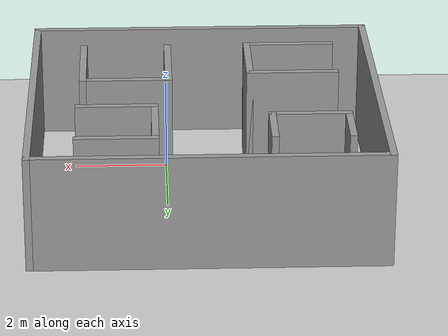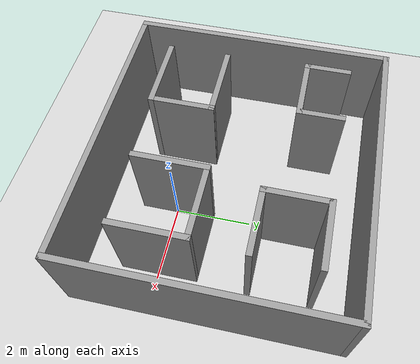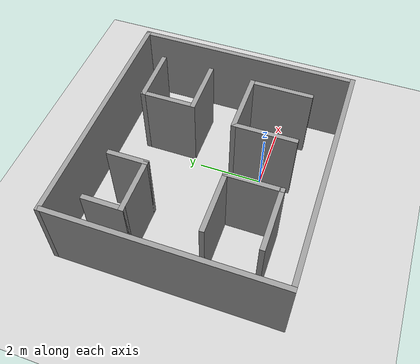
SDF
<sdf version="1.7">
 <world name="default">
  <light name="sun" type="directional">
   <pose>0 0 10 0 -0 0</pose>
   <diffuse>0.8 0.8 0.8 1</diffuse>
   <specular>0.2 0.2 0.2 1</specular>
   <attenuation>
    <range>1000</range>
    <constant>0.9</constant>
    <linear>0.01</linear>
    <quadratic>0.001</quadratic>
   </attenuation>
   <direction>-0.5 0.1 -0.9</direction>
   <spot><inner_angle>0</inner_angle><outer_angle>0</outer_angle><falloff>0</falloff></spot>
  </light>
  <model name="ground_plane">
   <static>1</static>
   <link name="link">
    <collision name="collision">
     <geometry><plane><normal>0 0 1</normal><size>100 100</size></plane></geometry>
     <surface><friction><ode><mu>100</mu><mu2>50</mu2></ode></friction></surface>
    </collision>
    <visual name="visual">
     <cast_shadows>0</cast_shadows>
     <geometry><plane><normal>0 0 1</normal><size>100 100</size></plane></geometry>
     <material>
      <script><uri>file://media/materials/scripts/gazebo.material</uri><name>Gazebo/Grey</name></script>
     </material>
    </visual>
   </link>
  </model>
  <gravity>0 0 -9.8</gravity>
  <magnetic_field>6e-06 2.3e-05 -4.2e-05</magnetic_field>
  <atmosphere type="adiabatic"/>
  <physics type="ode">
   <max_step_size>0.001</max_step_size>
   <real_time_factor>1</real_time_factor>
   <real_time_update_rate>1000</real_time_update_rate>
  </physics>
  <scene><ambient>0.4 0.4 0.4 1</ambient><background>0.7 0.7 0.7 1</background><shadows>1</shadows></scene>
  <audio><device>default</device></audio>
  <spherical_coordinates>
   <surface_model>EARTH_WGS84</surface_model>
   <latitude_deg>0</latitude_deg>
   <longitude_deg>0</longitude_deg>
   <elevation>0</elevation>
   <heading_deg>0</heading_deg>
  </spherical_coordinates>
  <model name="map">
   <pose>-0.815016 1.44761 0 0 -0 0</pose>
   <link name="Wall_11">
    <collision name="Wall_11_Collision">
     <geometry><box><size>1.25 0.15 2.5</size></box></geometry>
     <pose>0 0 1.25 0 -0 0</pose>
    </collision>
    <visual name="Wall_11_Visual">
     <pose>0 0 1.25 0 -0 0</pose>
     <geometry><box><size>1.25 0.15 2.5</size></box></geometry>
     <material>
      <script><uri>file://media/materials/scripts/gazebo.material</uri><name>Gazebo/Grey</name></script>
      <ambient>1 1 1 1</ambient>
     </material>
     <meta><layer>0</layer></meta>
    </visual>
    <pose>-2.96019 1.91685 0 0 -0 -1.5708</pose>
   </link>
   <link name="Wall_12">
    <collision name="Wall_12_Collision">
     <geometry><box><size>1.75 0.15 2.5</size></box></geometry>
     <pose>0 0 1.25 0 -0 0</pose>
    </collision>
    <visual name="Wall_12_Visual">
     <pose>0 0 1.25 0 -0 0</pose>
     <geometry><box><size>1.75 0.15 2.5</size></box></geometry>
     <material>
      <script><uri>file://media/materials/scripts/gazebo.material</uri><name>Gazebo/Grey</name></script>
      <ambient>1 1 1 1</ambient>
     </material>
     <meta><layer>0</layer></meta>
    </visual>
    <pose>-2.16019 1.36685 0 0 -0 0</pose>
   </link>
   <link name="Wall_13">
    <collision name="Wall_13_Collision">
     <geometry><box><size>1.25 0.15 2.5</size></box></geometry>
     <pose>0 0 1.25 0 -0 0</pose>
    </collision>
    <visual name="Wall_13_Visual">
     <pose>0 0 1.25 0 -0 0</pose>
     <geometry><box><size>1.25 0.15 2.5</size></box></geometry>
     <material>
      <script><uri>file://media/materials/scripts/gazebo.material</uri><name>Gazebo/Grey</name></script>
      <ambient>1 1 1 1</ambient>
     </material>
     <meta><layer>0</layer></meta>
    </visual>
    <pose>-1.36019 1.91685 0 0 -0 1.5708</pose>
   </link>
   <link name="Wall_15">
    <collision name="Wall_15_Collision">
     <geometry><box><size>1.75 0.15 2.5</size></box></geometry>
     <pose>0 0 1.25 0 -0 0</pose>
    </collision>
    <visual name="Wall_15_Visual">
     <pose>0 0 1.25 0 -0 0</pose>
     <geometry><box><size>1.75 0.15 2.5</size></box></geometry>
     <material>
      <script><uri>file://media/materials/scripts/gazebo.material</uri><name>Gazebo/Grey</name></script>
      <ambient>1 1 1 1</ambient>
     </material>
     <meta><layer>0</layer></meta>
    </visual>
    <pose>1.88226 2.48206 0 0 -0 3.14159</pose>
   </link>
   <link name="Wall_16">
    <collision name="Wall_16_Collision">
     <geometry><box><size>1.75 0.15 2.5</size></box></geometry>
     <pose>0 0 1.25 0 -0 0</pose>
    </collision>
    <visual name="Wall_16_Visual">
     <pose>0 0 1.25 0 -0 0</pose>
     <geometry><box><size>1.75 0.15 2.5</size></box></geometry>
     <material>
      <script><uri>file://media/materials/scripts/gazebo.material</uri><name>Gazebo/Grey</name></script>
      <ambient>1 1 1 1</ambient>
     </material>
     <meta><layer>0</layer></meta>
    </visual>
    <pose>1.08226 1.68206 0 0 -0 -1.5708</pose>
   </link>
   <link name="Wall_17">
    <collision name="Wall_17_Collision">
     <geometry><box><size>1.75 0.15 2.5</size></box></geometry>
     <pose>0 0 1.25 0 -0 0</pose>
    </collision>
    <visual name="Wall_17_Visual">
     <pose>0 0 1.25 0 -0 0</pose>
     <geometry><box><size>1.75 0.15 2.5</size></box></geometry>
     <material>
      <script><uri>file://media/materials/scripts/gazebo.material</uri><name>Gazebo/Grey</name></script>
      <ambient>1 1 1 1</ambient>
     </material>
     <meta><layer>0</layer></meta>
    </visual>
    <pose>1.88226 0.882057 0 0 -0 0</pose>
   </link>
   <link name="Wall_19">
    <collision name="Wall_19_Collision">
     <geometry><box><size>2 0.15 2.5</size></box></geometry>
     <pose>0 0 1.25 0 -0 0</pose>
    </collision>
    <visual name="Wall_19_Visual">
     <pose>0 0 1.25 0 -0 0</pose>
     <geometry><box><size>2 0.15 2.5</size></box></geometry>
     <material>
      <script><uri>file://media/materials/scripts/gazebo.material</uri><name>Gazebo/Grey</name></script>
      <ambient>1 1 1 1</ambient>
     </material>
     <meta><layer>0</layer></meta>
    </visual>
    <pose>-1.92873 -0.83345 0 0 -0 0</pose>
   </link>
   <link name="Wall_20">
    <collision name="Wall_20_Collision">
     <geometry><box><size>1.75 0.15 2.5</size></box></geometry>
     <pose>0 0 1.25 0 -0 0</pose>
    </collision>
    <visual name="Wall_20_Visual">
     <pose>0 0 1.25 0 -0 0</pose>
     <geometry><box><size>1.75 0.15 2.5</size></box></geometry>
     <material>
      <script><uri>file://media/materials/scripts/gazebo.material</uri><name>Gazebo/Grey</name></script>
      <ambient>1 1 1 1</ambient>
     </material>
     <meta><layer>0</layer></meta>
    </visual>
    <pose>-1.00373 -1.63345 0 0 -0 -1.5708</pose>
   </link>
   <link name="Wall_21">
    <collision name="Wall_21_Collision">
     <geometry><box><size>2 0.15 2.5</size></box></geometry>
     <pose>0 0 1.25 0 -0 0</pose>
    </collision>
    <visual name="Wall_21_Visual">
     <pose>0 0 1.25 0 -0 0</pose>
     <geometry><box><size>2 0.15 2.5</size></box></geometry>
     <material>
      <script><uri>file://media/materials/scripts/gazebo.material</uri><name>Gazebo/Grey</name></script>
      <ambient>1 1 1 1</ambient>
     </material>
     <meta><layer>0</layer></meta>
    </visual>
    <pose>-1.92873 -2.43345 0 0 -0 3.14159</pose>
   </link>
   <link name="Wall_23">
    <collision name="Wall_23_Collision">
     <geometry><box><size>2 0.15 2.5</size></box></geometry>
     <pose>0 0 1.25 0 -0 0</pose>
    </collision>
    <visual name="Wall_23_Visual">
     <pose>0 0 1.25 0 -0 0</pose>
     <geometry><box><size>2 0.15 2.5</size></box></geometry>
     <material>
      <script><uri>file://media/materials/scripts/gazebo.material</uri><name>Gazebo/Grey</name></script>
      <ambient>1 1 1 1</ambient>
     </material>
     <meta><layer>0</layer></meta>
    </visual>
    <pose>0.765955 -1.42932 0 0 -0 1.5708</pose>
   </link>
   <link name="Wall_24">
    <collision name="Wall_24_Collision">
     <geometry><box><size>2 0.15 2.5</size></box></geometry>
     <pose>0 0 1.25 0 -0 0</pose>
    </collision>
    <visual name="Wall_24_Visual">
     <pose>0 0 1.25 0 -0 0</pose>
     <geometry><box><size>2 0.15 2.5</size></box></geometry>
     <material>
      <script><uri>file://media/materials/scripts/gazebo.material</uri><name>Gazebo/Grey</name></script>
      <ambient>1 1 1 1</ambient>
     </material>
     <meta><layer>0</layer></meta>
    </visual>
    <pose>1.69095 -0.504325 0 0 -0 0</pose>
   </link>
   <link name="Wall_25">
    <collision name="Wall_25_Collision">
     <geometry><box><size>2 0.15 2.5</size></box></geometry>
     <pose>0 0 1.25 0 -0 0</pose>
    </collision>
    <visual name="Wall_25_Visual">
     <pose>0 0 1.25 0 -0 0</pose>
     <geometry><box><size>2 0.15 2.5</size></box></geometry>
     <material>
      <script><uri>file://media/materials/scripts/gazebo.material</uri><name>Gazebo/Grey</name></script>
      <ambient>1 1 1 1</ambient>
     </material>
     <meta><layer>0</layer></meta>
    </visual>
    <pose>2.61596 -1.42932 0 0 -0 -1.5708</pose>
   </link>
   <link name="Wall_5">
    <collision name="Wall_5_Collision">
     <geometry><box><size>7 0.15 2.5</size></box></geometry>
     <pose>0 0 1.25 0 -0 0</pose>
    </collision>
    <visual name="Wall_5_Visual">
     <pose>0 0 1.25 0 -0 0</pose>
     <geometry><box><size>7 0.15 2.5</size></box></geometry>
     <material>
      <script><uri>file://media/materials/scripts/gazebo.material</uri><name>Gazebo/Grey</name></script>
      <ambient>1 1 1 1</ambient>
     </material>
     <meta><layer>0</layer></meta>
    </visual>
    <pose>-3.675 -0 0 0 -0 -1.5708</pose>
   </link>
   <link name="Wall_6">
    <collision name="Wall_6_Collision">
     <geometry><box><size>7.5 0.15 2.5</size></box></geometry>
     <pose>0 0 1.25 0 -0 0</pose>
    </collision>
    <visual name="Wall_6_Visual">
     <pose>0 0 1.25 0 -0 0</pose>
     <geometry><box><size>7.5 0.15 2.5</size></box></geometry>
     <material>
      <script><uri>file://media/materials/scripts/gazebo.material</uri><name>Gazebo/Grey</name></script>
      <ambient>1 1 1 1</ambient>
     </material>
     <meta><layer>0</layer></meta>
    </visual>
    <pose>0 -3.425 0 0 -0 0</pose>
   </link>
   <link name="Wall_7">
    <collision name="Wall_7_Collision">
     <geometry><box><size>7 0.15 2.5</size></box></geometry>
     <pose>0 0 1.25 0 -0 0</pose>
    </collision>
    <visual name="Wall_7_Visual">
     <pose>0 0 1.25 0 -0 0</pose>
     <geometry><box><size>7 0.15 2.5</size></box></geometry>
     <material>
      <script><uri>file://media/materials/scripts/gazebo.material</uri><name>Gazebo/Grey</name></script>
      <ambient>1 1 1 1</ambient>
     </material>
     <meta><layer>0</layer></meta>
    </visual>
    <pose>3.675 -0 0 0 -0 1.5708</pose>
   </link>
   <link name="Wall_8">
    <collision name="Wall_8_Collision">
     <geometry><box><size>7.5 0.15 2.5</size></box></geometry>
     <pose>0 0 1.25 0 -0 0</pose>
    </collision>
    <visual name="Wall_8_Visual">
     <pose>0 0 1.25 0 -0 0</pose>
     <geometry><box><size>7.5 0.15 2.5</size></box></geometry>
     <material>
      <script><uri>file://media/materials/scripts/gazebo.material</uri><name>Gazebo/Grey</name></script>
      <ambient>1 1 1 1</ambient>
     </material>
     <meta><layer>0</layer></meta>
    </visual>
    <pose>0 3.425 0 0 -0 3.14159</pose>
   </link>
   <static>1</static>
  </model>
 </world>
</sdf>
